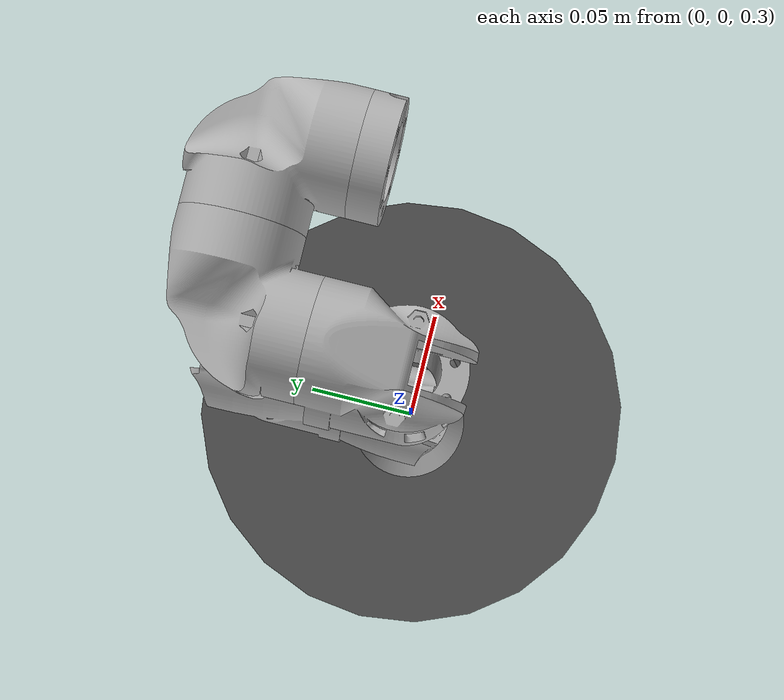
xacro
<?xml version="1.0" ?>
<robot name="six_dof_urdf" xmlns:xacro="http://www.ros.org/wiki/xacro">

<xacro:arg name="use_sim" default="true" />

<xacro:include filename="$(find six_dof_urdf_description)/urdf/materials.xacro" />
<xacro:if value="$(arg use_sim)">
  <xacro:include filename="$(find six_dof_urdf_description)/urdf/six_dof_urdf.ros2control" />
  <xacro:include filename="$(find six_dof_urdf_description)/urdf/six_dof_urdf.gazebo" />
</xacro:if>

<!-- Ground-fixed world link -->
<link name="world"/>

<!-- Large base platform for stability (200mm diameter, 20mm thick cylinder) -->
<link name="base_platform">
  <inertial>
    <origin xyz="0 0 -0.01" rpy="0 0 0"/>
    <mass value="5.0"/>
    <inertia ixx="0.0127" iyy="0.0127" izz="0.025" ixy="0.0" iyz="0.0" ixz="0.0"/>
  </inertial>
  <visual>
    <origin xyz="0 0 -0.01" rpy="0 0 0"/>
    <geometry>
      <cylinder radius="0.1" length="0.02"/>
    </geometry>
    <material name="dark_grey">
      <color rgba="0.3 0.3 0.3 1.0"/>
    </material>
  </visual>
  <collision>
    <origin xyz="0 0 -0.01" rpy="0 0 0"/>
    <geometry>
      <cylinder radius="0.1" length="0.02"/>
    </geometry>
  </collision>
</link>

<!-- Fix platform to the world (ground) -->
<joint name="world_to_platform" type="fixed">
  <origin xyz="0.0 0.0 0.33" rpy="0 0 0"/>
  <parent link="world"/>
  <child link="base_platform"/>
</joint>

<!-- Fix arm base on top of the platform -->
<joint name="platform_to_base" type="fixed">
  <origin xyz="0.0 0.0 0.0" rpy="0 0 0"/>
  <parent link="base_platform"/>
  <child link="base_link"/>
</joint>

<link name="base_link">
  <inertial>
    <origin xyz="-0.005846550166018204 -2.0745025295335243e-07 -0.006510816823759035" rpy="0 0 0"/>
    <mass value="0.6806509078768139"/>
    <inertia ixx="0.0003" iyy="0.000288" izz="0.000349" ixy="-0.0" iyz="0.0" ixz="1e-06"/>
  </inertial>
  <visual>
    <origin xyz="0 0 0" rpy="0 0 0"/>
    <geometry>
      <mesh filename="file://$(find six_dof_urdf_description)/meshes/base_link.stl" scale="0.001 0.001 0.001"/>
    </geometry>
    <material name="silver"/>
  </visual>
  <collision>
    <origin xyz="0 0 0" rpy="0 0 0"/>
    <geometry>
      <mesh filename="file://$(find six_dof_urdf_description)/meshes/base_link.stl" scale="0.001 0.001 0.001"/>
    </geometry>
  </collision>
</link>

<link name="link_1_1">
  <inertial>
    <origin xyz="-4.8662907871713235e-08 0.003848063625319828 0.020999506264943697" rpy="0 0 0"/>
    <mass value="0.3053882336805585"/>
    <inertia ixx="0.000198" iyy="0.000208" izz="6.1e-05" ixy="0.0" iyz="-1.7e-05" ixz="0.0"/>
  </inertial>
  <visual>
    <origin xyz="0.0053 0.0 -0.030976" rpy="0 0 0"/>
    <geometry>
      <mesh filename="file://$(find six_dof_urdf_description)/meshes/link_1_1.stl" scale="0.001 0.001 0.001"/>
    </geometry>
    <material name="silver"/>
  </visual>
  <collision>
    <origin xyz="0.0053 0.0 -0.030976" rpy="0 0 0"/>
    <geometry>
      <mesh filename="file://$(find six_dof_urdf_description)/meshes/link_1_1.stl" scale="0.001 0.001 0.001"/>
    </geometry>
  </collision>
</link>

<link name="link_2_1">
  <inertial>
    <origin xyz="3.318997876987969e-05 0.02427635758580334 0.06438942662133099" rpy="0 0 0"/>
    <mass value="0.6324219241146951"/>
    <inertia ixx="0.002" iyy="0.001929" izz="0.000217" ixy="-0.0" iyz="-0.000202" ixz="1e-06"/>
  </inertial>
  <visual>
    <origin xyz="0.0053 -0.026146 -0.061976" rpy="0 0 0"/>
    <geometry>
      <mesh filename="file://$(find six_dof_urdf_description)/meshes/link_2_1.stl" scale="0.001 0.001 0.001"/>
    </geometry>
    <material name="silver"/>
  </visual>
  <collision>
    <origin xyz="0.0053 -0.026146 -0.061976" rpy="0 0 0"/>
    <geometry>
      <mesh filename="file://$(find six_dof_urdf_description)/meshes/link_2_1.stl" scale="0.001 0.001 0.001"/>
    </geometry>
  </collision>
</link>

<link name="link_3_1">
  <inertial>
    <origin xyz="3.898949743747545e-05 -0.02378302240744465 0.050614157033559426" rpy="0 0 0"/>
    <mass value="0.5381201694701858"/>
    <inertia ixx="0.001302" iyy="0.001219" izz="0.000192" ixy="-0.0" iyz="0.000166" ixz="0.0"/>
  </inertial>
  <visual>
    <origin xyz="0.0053 -0.033 -0.187576" rpy="0 0 0"/>
    <geometry>
      <mesh filename="file://$(find six_dof_urdf_description)/meshes/link_3_1.stl" scale="0.001 0.001 0.001"/>
    </geometry>
    <material name="silver"/>
  </visual>
  <collision>
    <origin xyz="0.0053 -0.033 -0.187576" rpy="0 0 0"/>
    <geometry>
      <mesh filename="file://$(find six_dof_urdf_description)/meshes/link_3_1.stl" scale="0.001 0.001 0.001"/>
    </geometry>
  </collision>
</link>

<link name="link_4_1">
  <inertial>
    <origin xyz="0.0038352391136786124 0.012185413466673612 4.3583555612847213e-05" rpy="0 0 0"/>
    <mass value="0.18871043344362073"/>
    <inertia ixx="5.8e-05" iyy="3.3e-05" izz="6e-05" ixy="-1.1e-05" iyz="0.0" ixz="0.0"/>
  </inertial>
  <visual>
    <origin xyz="0.0053 -0.027 -0.308376" rpy="0 0 0"/>
    <geometry>
      <mesh filename="file://$(find six_dof_urdf_description)/meshes/link_4_1.stl" scale="0.001 0.001 0.001"/>
    </geometry>
    <material name="silver"/>
  </visual>
  <collision>
    <origin xyz="0.0053 -0.027 -0.308376" rpy="0 0 0"/>
    <geometry>
      <mesh filename="file://$(find six_dof_urdf_description)/meshes/link_4_1.stl" scale="0.001 0.001 0.001"/>
    </geometry>
  </collision>
</link>

<link name="link_5_1">
  <inertial>
    <origin xyz="0.012185631114765495 -0.00377444604761909 1.831093849946619e-05" rpy="0 0 0"/>
    <mass value="0.18871039331342454"/>
    <inertia ixx="3.3e-05" iyy="5.8e-05" izz="6e-05" ixy="1.1e-05" iyz="0.0" ixz="0.0"/>
  </inertial>
  <visual>
    <origin xyz="-0.0217 -0.0532 -0.308376" rpy="0 0 0"/>
    <geometry>
      <mesh filename="file://$(find six_dof_urdf_description)/meshes/link_5_1.stl" scale="0.001 0.001 0.001"/>
    </geometry>
    <material name="silver"/>
  </visual>
  <collision>
    <origin xyz="-0.0217 -0.0532 -0.308376" rpy="0 0 0"/>
    <geometry>
      <mesh filename="file://$(find six_dof_urdf_description)/meshes/link_5_1.stl" scale="0.001 0.001 0.001"/>
    </geometry>
  </collision>
</link>

<link name="link_6_1">
  <inertial>
    <origin xyz="-0.00010306218146281104 0.001084273850698144 -4.225819513370421e-05" rpy="0 0 0"/>
    <mass value="0.08214758524248748"/>
    <inertia ixx="9e-06" iyy="1e-05" izz="9e-06" ixy="-0.0" iyz="-0.0" ixz="0.0"/>
  </inertial>
  <visual>
    <origin xyz="-0.0479 -0.0262 -0.308376" rpy="0 0 0"/>
    <geometry>
      <mesh filename="file://$(find six_dof_urdf_description)/meshes/link_6_1.stl" scale="0.001 0.001 0.001"/>
    </geometry>
    <material name="silver"/>
  </visual>
  <collision>
    <origin xyz="-0.0479 -0.0262 -0.308376" rpy="0 0 0"/>
    <geometry>
      <mesh filename="file://$(find six_dof_urdf_description)/meshes/link_6_1.stl" scale="0.001 0.001 0.001"/>
    </geometry>
  </collision>
</link>

<joint name="joint_1" type="continuous">
  <origin xyz="-0.0053 0.0 0.030976" rpy="0 0 0"/>
  <parent link="base_link"/>
  <child link="link_1_1"/>
  <axis xyz="0.0 -0.0 -1.0"/>
</joint>

<joint name="joint_2" type="continuous">
  <origin xyz="0.0 0.026146 0.031" rpy="0 0 0"/>
  <parent link="link_1_1"/>
  <child link="link_2_1"/>
  <axis xyz="0.0 1.0 -0.0"/>
</joint>

<joint name="joint_3" type="continuous">
  <origin xyz="0.0 0.006854 0.1256" rpy="0 0 0"/>
  <parent link="link_2_1"/>
  <child link="link_3_1"/>
  <axis xyz="-0.0 -1.0 0.0"/>
</joint>

<joint name="joint_4" type="continuous">
  <origin xyz="0.0 -0.006 0.1208" rpy="0 0 0"/>
  <parent link="link_3_1"/>
  <child link="link_4_1"/>
  <axis xyz="-0.0 1.0 0.0"/>
</joint>

<joint name="joint_5" type="continuous">
  <origin xyz="0.027 0.0262 0.0" rpy="0 0 0"/>
  <parent link="link_4_1"/>
  <child link="link_5_1"/>
  <axis xyz="1.0 0.0 0.0"/>
</joint>

<joint name="joint_6" type="continuous">
  <origin xyz="0.0262 -0.027 0.0" rpy="0 0 0"/>
  <parent link="link_5_1"/>
  <child link="link_6_1"/>
  <axis xyz="0.0 -1.0 -0.0"/>
</joint>

</robot>

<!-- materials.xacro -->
<robot name="six_dof_urdf" xmlns:xacro="http://www.ros.org/wiki/xacro" >

<material name="silver">
  <color rgba="0.700 0.700 0.700 1.000"/>
</material>

</robot>

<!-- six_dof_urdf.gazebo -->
<robot name="six_dof_urdf" xmlns:xacro="http://www.ros.org/wiki/xacro" >

<xacro:property name="body_color" value="Gazebo/Silver" />

<gazebo reference="base_platform">
  <material>Gazebo/DarkGrey</material>
  <mu1>1.0</mu1>
  <mu2>1.0</mu2>
  <self_collide>false</self_collide>
</gazebo>

<gazebo reference="base_link">
  <material>${body_color}</material>
  <mu1>0.2</mu1>
  <mu2>0.2</mu2>
  <self_collide>true</self_collide>
  <gravity>true</gravity>
</gazebo>

<gazebo reference="link_1_1">
  <material>${body_color}</material>
  <mu1>0.2</mu1>
  <mu2>0.2</mu2>
  <self_collide>true</self_collide>
</gazebo>

<gazebo reference="link_2_1">
  <material>${body_color}</material>
  <mu1>0.2</mu1>
  <mu2>0.2</mu2>
  <self_collide>true</self_collide>
</gazebo>

<gazebo reference="link_3_1">
  <material>${body_color}</material>
  <mu1>0.2</mu1>
  <mu2>0.2</mu2>
  <self_collide>true</self_collide>
</gazebo>

<gazebo reference="link_4_1">
  <material>${body_color}</material>
  <mu1>0.2</mu1>
  <mu2>0.2</mu2>
  <self_collide>true</self_collide>
</gazebo>

<gazebo reference="link_5_1">
  <material>${body_color}</material>
  <mu1>0.2</mu1>
  <mu2>0.2</mu2>
  <self_collide>true</self_collide>
</gazebo>

<gazebo reference="link_6_1">
  <material>${body_color}</material>
  <mu1>0.2</mu1>
  <mu2>0.2</mu2>
  <self_collide>true</self_collide>
</gazebo>

<!-- ign_ros2_control plugin for Ignition Fortress -->
<gazebo>
  <plugin filename="ign_ros2_control-system" name="ign_ros2_control::IgnitionROS2ControlPlugin">
    <parameters>$(find six_dof_urdf_description)/config/controller_config.yaml</parameters>
  </plugin>
</gazebo>

</robot>
